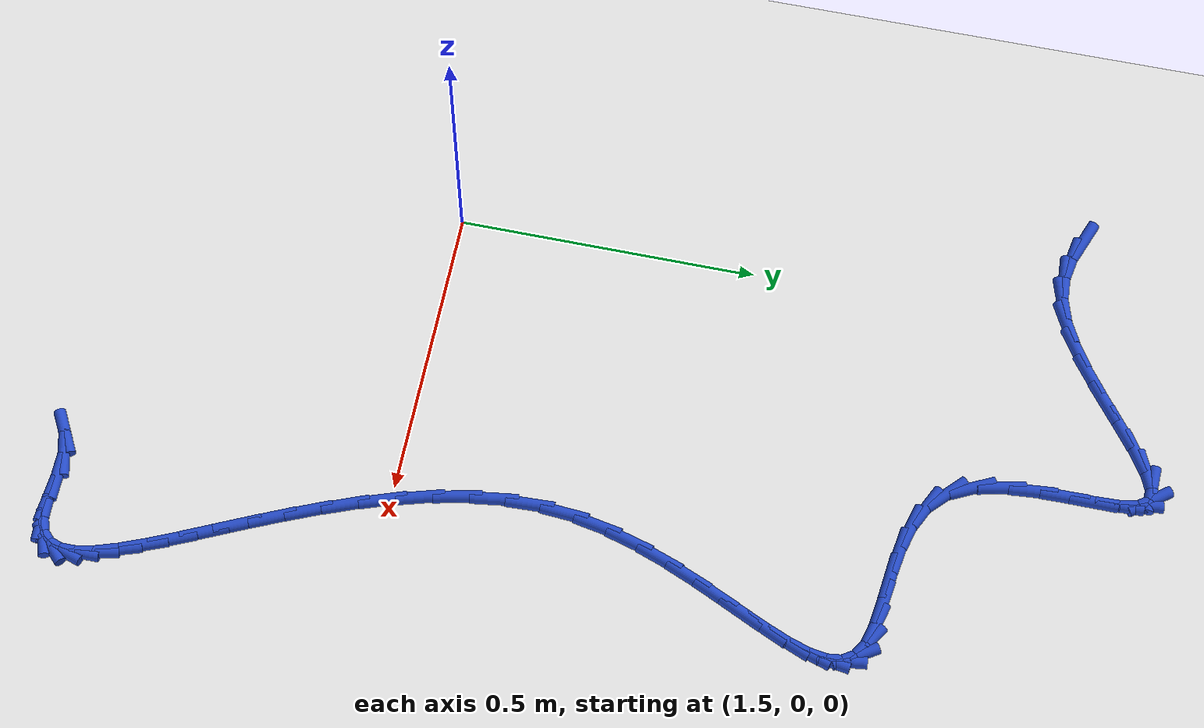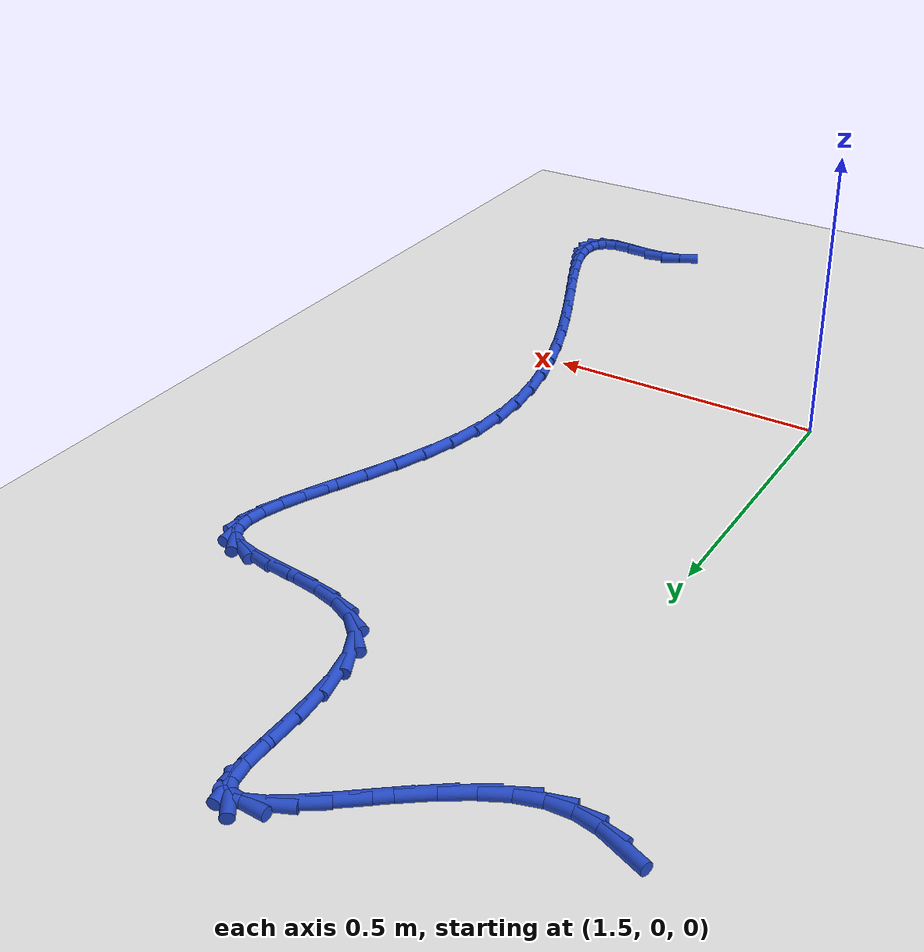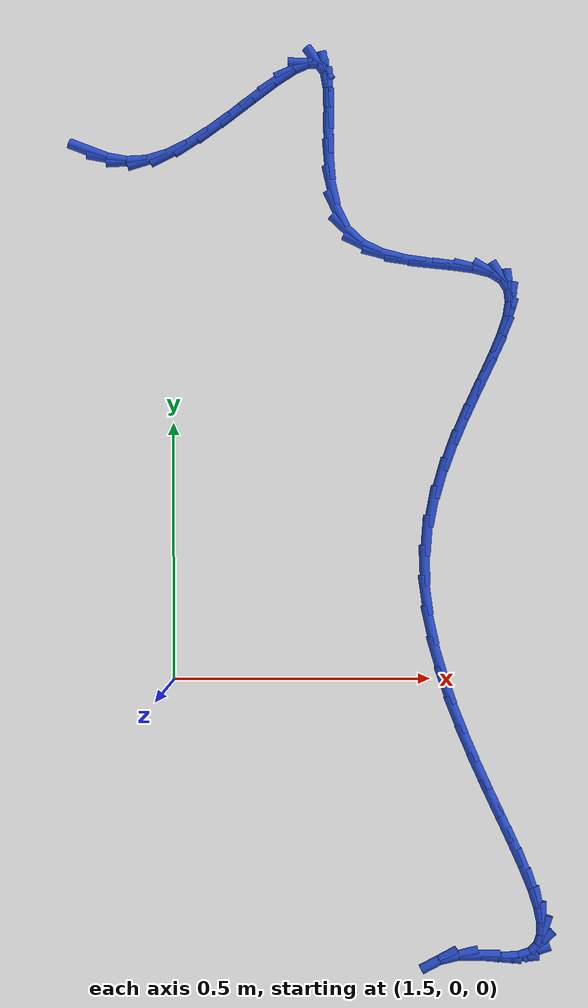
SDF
<sdf version="1.6">
 <world name="default">
  <model name="ground_plane">
   <static>1</static>
   <link name="link">
    <collision name="collision">
     <geometry><plane><normal>0 0 1</normal><size>100 100</size></plane></geometry>
     <surface><friction><ode><mu>100</mu><mu2>50</mu2></ode></friction></surface>
    </collision>
    <visual name="visual">
     <cast_shadows>0</cast_shadows>
     <geometry><plane><normal>0 0 1</normal><size>100 100</size></plane></geometry>
     <material>
      <script><uri>file://media/materials/scripts/gazebo.material</uri><name>Gazebo/WhiteGlow</name></script>
     </material>
    </visual>
   </link>
  </model>
  <model name="line">
   <link name="link_48">
    <pose>1.3337539306375097 1.0319830001110581 0.01 0 1.57 -0.36400352843014955</pose>
    <collision name="collision">
     <geometry><cylinder><radius>0.01</radius><length>0.08</length></cylinder></geometry>
    </collision>
    <visual name="visual">
     <material>
      <script><name>Gazebo/Blue</name><uri>file://media/materials/scripts/gazebo.material</uri></script>
     </material>
     <geometry><cylinder><radius>0.01</radius><length>0.08</length></cylinder></geometry>
    </visual>
   </link>
   <link name="link_49">
    <pose>1.3706001834991504 1.0179452955678614 0.01 0 1.57 -0.17708371613022572</pose>
    <collision name="collision">
     <geometry><cylinder><radius>0.01</radius><length>0.08</length></cylinder></geometry>
    </collision>
    <visual name="visual">
     <material>
      <script><name>Gazebo/Blue</name><uri>file://media/materials/scripts/gazebo.material</uri></script>
     </material>
     <geometry><cylinder><radius>0.01</radius><length>0.08</length></cylinder></geometry>
    </visual>
   </link>
   <link name="link_50">
    <pose>1.4086813195234185 1.0111303614218556 0.01 0 1.57 0.053120950739556694</pose>
    <collision name="collision">
     <geometry><cylinder><radius>0.01</radius><length>0.08</length></cylinder></geometry>
    </collision>
    <visual name="visual">
     <material>
      <script><name>Gazebo/Blue</name><uri>file://media/materials/scripts/gazebo.material</uri></script>
     </material>
     <geometry><cylinder><radius>0.01</radius><length>0.08</length></cylinder></geometry>
    </visual>
   </link>
   <link name="link_51">
    <pose>1.4485152433820359 1.0132483699275934 0.01 0 1.57 0.2912948138718969</pose>
    <collision name="collision">
     <geometry><cylinder><radius>0.01</radius><length>0.08</length></cylinder></geometry>
    </collision>
    <visual name="visual">
     <material>
      <script><name>Gazebo/Blue</name><uri>file://media/materials/scripts/gazebo.material</uri></script>
     </material>
     <geometry><cylinder><radius>0.01</radius><length>0.08</length></cylinder></geometry>
    </visual>
   </link>
   <link name="link_52">
    <pose>1.4905637073971858 1.025855485463928 0.01 0 1.57 0.46709459196604697</pose>
    <collision name="collision">
     <geometry><cylinder><radius>0.01</radius><length>0.08</length></cylinder></geometry>
    </collision>
    <visual name="visual">
     <material>
      <script><name>Gazebo/Blue</name><uri>file://media/materials/scripts/gazebo.material</uri></script>
     </material>
     <geometry><cylinder><radius>0.01</radius><length>0.08</length></cylinder></geometry>
    </visual>
   </link>
   <link name="link_53">
    <pose>1.534351632615425 1.047938444846299 0.01 0 1.57 0.5706663986711314</pose>
    <collision name="collision">
     <geometry><cylinder><radius>0.01</radius><length>0.08</length></cylinder></geometry>
    </collision>
    <visual name="visual">
     <material>
      <script><name>Gazebo/Blue</name><uri>file://media/materials/scripts/gazebo.material</uri></script>
     </material>
     <geometry><cylinder><radius>0.01</radius><length>0.08</length></cylinder></geometry>
    </visual>
   </link>
   <link name="link_54">
    <pose>1.5786299132699726 1.0763610777234653 0.01 0 1.57 0.6277244070314754</pose>
    <collision name="collision">
     <geometry><cylinder><radius>0.01</radius><length>0.08</length></cylinder></geometry>
    </collision>
    <visual name="visual">
     <material>
      <script><name>Gazebo/Blue</name><uri>file://media/materials/scripts/gazebo.material</uri></script>
     </material>
     <geometry><cylinder><radius>0.01</radius><length>0.08</length></cylinder></geometry>
    </visual>
   </link>
   <link name="link_55">
    <pose>1.6221262245512973 1.10792353136082 0.01 0 1.57 0.6499696890139711</pose>
    <collision name="collision">
     <geometry><cylinder><radius>0.01</radius><length>0.08</length></cylinder></geometry>
    </collision>
    <visual name="visual">
     <material>
      <script><name>Gazebo/Blue</name><uri>file://media/materials/scripts/gazebo.material</uri></script>
     </material>
     <geometry><cylinder><radius>0.01</radius><length>0.08</length></cylinder></geometry>
    </visual>
   </link>
   <link name="link_56">
    <pose>1.6635682416498665 1.1394259530237572 0.01 0 1.57 0.6376997019563035</pose>
    <collision name="collision">
     <geometry><cylinder><radius>0.01</radius><length>0.08</length></cylinder></geometry>
    </collision>
    <visual name="visual">
     <material>
      <script><name>Gazebo/Blue</name><uri>file://media/materials/scripts/gazebo.material</uri></script>
     </material>
     <geometry><cylinder><radius>0.01</radius><length>0.08</length></cylinder></geometry>
    </visual>
   </link>
   <link name="link_57">
    <pose>1.70168363975615 1.1676684899776708 0.01 0 1.57 0.5763144807700443</pose>
    <collision name="collision">
     <geometry><cylinder><radius>0.01</radius><length>0.08</length></cylinder></geometry>
    </collision>
    <visual name="visual">
     <material>
      <script><name>Gazebo/Blue</name><uri>file://media/materials/scripts/gazebo.material</uri></script>
     </material>
     <geometry><cylinder><radius>0.01</radius><length>0.08</length></cylinder></geometry>
    </visual>
   </link>
   <link name="link_58">
    <pose>1.7352000940606152 1.189451289487955 0.01 0 1.57 0.4132736091215912</pose>
    <collision name="collision">
     <geometry><cylinder><radius>0.01</radius><length>0.08</length></cylinder></geometry>
    </collision>
    <visual name="visual">
     <material>
      <script><name>Gazebo/Blue</name><uri>file://media/materials/scripts/gazebo.material</uri></script>
     </material>
     <geometry><cylinder><radius>0.01</radius><length>0.08</length></cylinder></geometry>
    </visual>
   </link>
   <link name="link_59">
    <pose>1.7628452797537293 1.2015744988200023 0.01 0 1.57 -0.03589561886949671</pose>
    <collision name="collision">
     <geometry><cylinder><radius>0.01</radius><length>0.08</length></cylinder></geometry>
    </collision>
    <visual name="visual">
     <material>
      <script><name>Gazebo/Blue</name><uri>file://media/materials/scripts/gazebo.material</uri></script>
     </material>
     <geometry><cylinder><radius>0.01</radius><length>0.08</length></cylinder></geometry>
    </visual>
   </link>
   <link name="link_60">
    <pose>1.7833468720259624 1.2008382652392073 0.01 0 1.57 -0.9226782099739248</pose>
    <collision name="collision">
     <geometry><cylinder><radius>0.01</radius><length>0.08</length></cylinder></geometry>
    </collision>
    <visual name="visual">
     <material>
      <script><name>Gazebo/Blue</name><uri>file://media/materials/scripts/gazebo.material</uri></script>
     </material>
     <geometry><cylinder><radius>0.01</radius><length>0.08</length></cylinder></geometry>
    </visual>
   </link>
   <link name="link_61">
    <pose>1.795703123769249 1.1845207636618194 0.01 0 1.57 -1.3897188025791753</pose>
    <collision name="collision">
     <geometry><cylinder><radius>0.01</radius><length>0.08</length></cylinder></geometry>
    </collision>
    <visual name="visual">
     <material>
      <script><name>Gazebo/Blue</name><uri>file://media/materials/scripts/gazebo.material</uri></script>
     </material>
     <geometry><cylinder><radius>0.01</radius><length>0.08</length></cylinder></geometry>
    </visual>
   </link>
   <link name="link_62">
    <pose>1.801276769686214 1.1540774817661033 0.01 0 1.57 -1.5372298876736168</pose>
    <collision name="collision">
     <geometry><cylinder><radius>0.01</radius><length>0.08</length></cylinder></geometry>
    </collision>
    <visual name="visual">
     <material>
      <script><name>Gazebo/Blue</name><uri>file://media/materials/scripts/gazebo.material</uri></script>
     </material>
     <geometry><cylinder><radius>0.01</radius><length>0.08</length></cylinder></geometry>
    </visual>
   </link>
   <link name="link_63">
    <pose>1.80265201997051 1.1131218790675736 0.01 0 1.57 1.566015073553247</pose>
    <collision name="collision">
     <geometry><cylinder><radius>0.01</radius><length>0.08</length></cylinder></geometry>
    </collision>
    <visual name="visual">
     <material>
      <script><name>Gazebo/Blue</name><uri>file://media/materials/scripts/gazebo.material</uri></script>
     </material>
     <geometry><cylinder><radius>0.01</radius><length>0.08</length></cylinder></geometry>
    </visual>
   </link>
   <link name="link_64">
    <pose>1.8024233002060286 1.0652854625371406 0.01 0 1.57 -1.5558864992763892</pose>
    <collision name="collision">
     <geometry><cylinder><radius>0.01</radius><length>0.08</length></cylinder></geometry>
    </collision>
    <visual name="visual">
     <material>
      <script><name>Gazebo/Blue</name><uri>file://media/materials/scripts/gazebo.material</uri></script>
     </material>
     <geometry><cylinder><radius>0.01</radius><length>0.08</length></cylinder></geometry>
    </visual>
   </link>
   <link name="link_65">
    <pose>1.8031850359766608 1.014199739145715 0.01 0 1.57 -1.485279274026279</pose>
    <collision name="collision">
     <geometry><cylinder><radius>0.01</radius><length>0.08</length></cylinder></geometry>
    </collision>
    <visual name="visual">
     <material>
      <script><name>Gazebo/Blue</name><uri>file://media/materials/scripts/gazebo.material</uri></script>
     </material>
     <geometry><cylinder><radius>0.01</radius><length>0.08</length></cylinder></geometry>
    </visual>
   </link>
   <link name="link_66">
    <pose>1.8075316528662984 0.9634962158642075 0.01 0 1.57 -1.349059631537695</pose>
    <collision name="collision">
     <geometry><cylinder><radius>0.01</radius><length>0.08</length></cylinder></geometry>
    </collision>
    <visual name="visual">
     <material>
      <script><name>Gazebo/Blue</name><uri>file://media/materials/scripts/gazebo.material</uri></script>
     </material>
     <geometry><cylinder><radius>0.01</radius><length>0.08</length></cylinder></geometry>
    </visual>
   </link>
   <link name="link_67">
    <pose>1.8180575764588318 0.9168063996635276 0.01 0 1.57 -1.1117209787946738</pose>
    <collision name="collision">
     <geometry><cylinder><radius>0.01</radius><length>0.08</length></cylinder></geometry>
    </collision>
    <visual name="visual">
     <material>
      <script><name>Gazebo/Blue</name><uri>file://media/materials/scripts/gazebo.material</uri></script>
     </material>
     <geometry><cylinder><radius>0.01</radius><length>0.08</length></cylinder></geometry>
    </visual>
   </link>
   <link name="link_68">
    <pose>1.8373572323381522 0.8777617975145865 0.01 0 1.57 -0.7566590972441934</pose>
    <collision name="collision">
     <geometry><cylinder><radius>0.01</radius><length>0.08</length></cylinder></geometry>
    </collision>
    <visual name="visual">
     <material>
      <script><name>Gazebo/Blue</name><uri>file://media/materials/scripts/gazebo.material</uri></script>
     </material>
     <geometry><cylinder><radius>0.01</radius><length>0.08</length></cylinder></geometry>
    </visual>
   </link>
   <link name="link_69">
    <pose>1.8674269218202773 0.8493726238579378 0.01 0 1.57 -0.4471492917470675</pose>
    <collision name="collision">
     <geometry><cylinder><radius>0.01</radius><length>0.08</length></cylinder></geometry>
    </collision>
    <visual name="visual">
     <material>
      <script><name>Gazebo/Blue</name><uri>file://media/materials/scripts/gazebo.material</uri></script>
     </material>
     <geometry><cylinder><radius>0.01</radius><length>0.08</length></cylinder></geometry>
    </visual>
   </link>
   <link name="link_70">
    <pose>1.9064308257885931 0.8306685360357183 0.01 0 1.57 -0.25365262705605074</pose>
    <collision name="collision">
     <geometry><cylinder><radius>0.01</radius><length>0.08</length></cylinder></geometry>
    </collision>
    <visual name="visual">
     <material>
      <script><name>Gazebo/Blue</name><uri>file://media/materials/scripts/gazebo.material</uri></script>
     </material>
     <geometry><cylinder><radius>0.01</radius><length>0.08</length></cylinder></geometry>
    </visual>
   </link>
   <link name="link_71">
    <pose>1.9510214991236716 0.8191090127588253 0.01 0 1.57 -0.14753956772271795</pose>
    <collision name="collision">
     <geometry><cylinder><radius>0.01</radius><length>0.08</length></cylinder></geometry>
    </collision>
    <visual name="visual">
     <material>
      <script><name>Gazebo/Blue</name><uri>file://media/materials/scripts/gazebo.material</uri></script>
     </material>
     <geometry><cylinder><radius>0.01</radius><length>0.08</length></cylinder></geometry>
    </visual>
   </link>
   <link name="link_72">
    <pose>1.9978478149712071 0.8121497083917767 0.01 0 1.57 -0.10686202392522685</pose>
    <collision name="collision">
     <geometry><cylinder><radius>0.01</radius><length>0.08</length></cylinder></geometry>
    </collision>
    <visual name="visual">
     <material>
      <script><name>Gazebo/Blue</name><uri>file://media/materials/scripts/gazebo.material</uri></script>
     </material>
     <geometry><cylinder><radius>0.01</radius><length>0.08</length></cylinder></geometry>
    </visual>
   </link>
   <link name="link_73">
    <pose>2.043558646476893 0.8072462772990899 0.01 0 1.57 -0.1299939142345705</pose>
    <collision name="collision">
     <geometry><cylinder><radius>0.01</radius><length>0.08</length></cylinder></geometry>
    </collision>
    <visual name="visual">
     <material>
      <script><name>Gazebo/Blue</name><uri>file://media/materials/scripts/gazebo.material</uri></script>
     </material>
     <geometry><cylinder><radius>0.01</radius><length>0.08</length></cylinder></geometry>
    </visual>
   </link>
   <link name="link_74">
    <pose>2.0848028667864247 0.8018543738452828 0.01 0 1.57 -0.2468952321997783</pose>
    <collision name="collision">
     <geometry><cylinder><radius>0.01</radius><length>0.08</length></cylinder></geometry>
    </collision>
    <visual name="visual">
     <material>
      <script><name>Gazebo/Blue</name><uri>file://media/materials/scripts/gazebo.material</uri></script>
     </material>
     <geometry><cylinder><radius>0.01</radius><length>0.08</length></cylinder></geometry>
    </visual>
   </link>
   <link name="link_75">
    <pose>2.1182293490454946 0.7934296523948727 0.01 0 1.57 -0.5438593795783099</pose>
    <collision name="collision">
     <geometry><cylinder><radius>0.01</radius><length>0.08</length></cylinder></geometry>
    </collision>
    <visual name="visual">
     <material>
      <script><name>Gazebo/Blue</name><uri>file://media/materials/scripts/gazebo.material</uri></script>
     </material>
     <geometry><cylinder><radius>0.01</radius><length>0.08</length></cylinder></geometry>
    </visual>
   </link>
   <link name="link_76">
    <pose>2.1409323989203535 0.7797013921637017 0.01 0 1.57 -1.0131340074453357</pose>
    <collision name="collision">
     <geometry><cylinder><radius>0.01</radius><length>0.08</length></cylinder></geometry>
    </collision>
    <visual name="visual">
     <material>
      <script><name>Gazebo/Blue</name><uri>file://media/materials/scripts/gazebo.material</uri></script>
     </material>
     <geometry><cylinder><radius>0.01</radius><length>0.08</length></cylinder></geometry>
    </visual>
   </link>
   <link name="link_77">
    <pose>2.1530518826237985 0.7602697304960382 0.01 0 1.57 -1.4521743615835185</pose>
    <collision name="collision">
     <geometry><cylinder><radius>0.01</radius><length>0.08</length></cylinder></geometry>
    </collision>
    <visual name="visual">
     <material>
      <script><name>Gazebo/Blue</name><uri>file://media/materials/scripts/gazebo.material</uri></script>
     </material>
     <geometry><cylinder><radius>0.01</radius><length>0.08</length></cylinder></geometry>
    </visual>
   </link>
   <link name="link_78">
    <pose>2.156001885180525 0.7355175449198376 0.01 0 1.57 1.4104618495751808</pose>
    <collision name="collision">
     <geometry><cylinder><radius>0.01</radius><length>0.08</length></cylinder></geometry>
    </collision>
    <visual name="visual">
     <material>
      <script><name>Gazebo/Blue</name><uri>file://media/materials/scripts/gazebo.material</uri></script>
     </material>
     <geometry><cylinder><radius>0.01</radius><length>0.08</length></cylinder></geometry>
    </visual>
   </link>
   <link name="link_79">
    <pose>2.15120079375677 0.7058303557266292 0.01 0 1.57 1.2563826910621199</pose>
    <collision name="collision">
     <geometry><cylinder><radius>0.01</radius><length>0.08</length></cylinder></geometry>
    </collision>
    <visual name="visual">
     <material>
      <script><name>Gazebo/Blue</name><uri>file://media/materials/scripts/gazebo.material</uri></script>
     </material>
     <geometry><cylinder><radius>0.01</radius><length>0.08</length></cylinder></geometry>
    </visual>
   </link>
   <link name="link_80">
    <pose>2.1400669955187714 0.6715936832079424 0.01 0 1.57 1.1749438660977565</pose>
    <collision name="collision">
     <geometry><cylinder><radius>0.01</radius><length>0.08</length></cylinder></geometry>
    </collision>
    <visual name="visual">
     <material>
      <script><name>Gazebo/Blue</name><uri>file://media/materials/scripts/gazebo.material</uri></script>
     </material>
     <geometry><cylinder><radius>0.01</radius><length>0.08</length></cylinder></geometry>
    </visual>
   </link>
   <link name="link_81">
    <pose>2.124018877632766 0.6331930476553054 0.01 0 1.57 1.1368888580453014</pose>
    <collision name="collision">
     <geometry><cylinder><radius>0.01</radius><length>0.08</length></cylinder></geometry>
    </collision>
    <visual name="visual">
     <material>
      <script><name>Gazebo/Blue</name><uri>file://media/materials/scripts/gazebo.material</uri></script>
     </material>
     <geometry><cylinder><radius>0.01</radius><length>0.08</length></cylinder></geometry>
    </visual>
   </link>
   <link name="link_82">
    <pose>2.1044748272649905 0.5910139693602473 0.01 0 1.57 1.1277975543776535</pose>
    <collision name="collision">
     <geometry><cylinder><radius>0.01</radius><length>0.08</length></cylinder></geometry>
    </collision>
    <visual name="visual">
     <material>
      <script><name>Gazebo/Blue</name><uri>file://media/materials/scripts/gazebo.material</uri></script>
     </material>
     <geometry><cylinder><radius>0.01</radius><length>0.08</length></cylinder></geometry>
    </visual>
   </link>
   <link name="link_83">
    <pose>2.0828532315816832 0.5454419686142977 0.01 0 1.57 1.14077560575886</pose>
    <collision name="collision">
     <geometry><cylinder><radius>0.01</radius><length>0.08</length></cylinder></geometry>
    </collision>
    <visual name="visual">
     <material>
      <script><name>Gazebo/Blue</name><uri>file://media/materials/scripts/gazebo.material</uri></script>
     </material>
     <geometry><cylinder><radius>0.01</radius><length>0.08</length></cylinder></geometry>
    </visual>
   </link>
   <link name="link_84">
    <pose>2.06057247774908 0.4968625657089848 0.01 0 1.57 1.1728863777894047</pose>
    <collision name="collision">
     <geometry><cylinder><radius>0.01</radius><length>0.08</length></cylinder></geometry>
    </collision>
    <visual name="visual">
     <material>
      <script><name>Gazebo/Blue</name><uri>file://media/materials/scripts/gazebo.material</uri></script>
     </material>
     <geometry><cylinder><radius>0.01</radius><length>0.08</length></cylinder></geometry>
    </visual>
   </link>
   <link name="link_85">
    <pose>2.039050952933419 0.4456612809358376 0.01 0 1.57 1.2234799303606845</pose>
    <collision name="collision">
     <geometry><cylinder><radius>0.01</radius><length>0.08</length></cylinder></geometry>
    </collision>
    <visual name="visual">
     <material>
      <script><name>Gazebo/Blue</name><uri>file://media/materials/scripts/gazebo.material</uri></script>
     </material>
     <geometry><cylinder><radius>0.01</radius><length>0.08</length></cylinder></geometry>
    </visual>
   </link>
   <link name="link_86">
    <pose>2.019707044300937 0.3922236345863862 0.01 0 1.57 1.2933129779059274</pose>
    <collision name="collision">
     <geometry><cylinder><radius>0.01</radius><length>0.08</length></cylinder></geometry>
    </collision>
    <visual name="visual">
     <material>
      <script><name>Gazebo/Blue</name><uri>file://media/materials/scripts/gazebo.material</uri></script>
     </material>
     <geometry><cylinder><radius>0.01</radius><length>0.08</length></cylinder></geometry>
    </visual>
   </link>
   <link name="link_87">
    <pose>2.003959139017872 0.3369351469521581 0.01 0 1.57 1.383879867172445</pose>
    <collision name="collision">
     <geometry><cylinder><radius>0.01</radius><length>0.08</length></cylinder></geometry>
    </collision>
    <visual name="visual">
     <material>
      <script><name>Gazebo/Blue</name><uri>file://media/materials/scripts/gazebo.material</uri></script>
     </material>
     <geometry><cylinder><radius>0.01</radius><length>0.08</length></cylinder></geometry>
    </visual>
   </link>
   <link name="link_88">
    <pose>1.9932256242504593 0.28018133832468295 0.01 0 1.57 1.4958244685458428</pose>
    <collision name="collision">
     <geometry><cylinder><radius>0.01</radius><length>0.08</length></cylinder></geometry>
    </collision>
    <visual name="visual">
     <material>
      <script><name>Gazebo/Blue</name><uri>file://media/materials/scripts/gazebo.material</uri></script>
     </material>
     <geometry><cylinder><radius>0.01</radius><length>0.08</length></cylinder></geometry>
    </visual>
   </link>
   <link name="link_89">
    <pose>1.9888816191019523 0.22234812863861078 0.01 0 1.57 -1.531008699874685</pose>
    <collision name="collision">
     <geometry><cylinder><radius>0.01</radius><length>0.08</length></cylinder></geometry>
    </collision>
    <visual name="visual">
     <material>
      <script><name>Gazebo/Blue</name><uri>file://media/materials/scripts/gazebo.material</uri></script>
     </material>
     <geometry><cylinder><radius>0.01</radius><length>0.08</length></cylinder></geometry>
    </visual>
   </link>
   <link name="link_90">
    <pose>1.9912110855991048 0.1638315162418504 0.01 0 1.57 -1.4332269015085914</pose>
    <collision name="collision">
     <geometry><cylinder><radius>0.01</radius><length>0.08</length></cylinder></geometry>
    </collision>
    <visual name="visual">
     <material>
      <script><name>Gazebo/Blue</name><uri>file://media/materials/scripts/gazebo.material</uri></script>
     </material>
     <geometry><cylinder><radius>0.01</radius><length>0.08</length></cylinder></geometry>
    </visual>
   </link>
   <link name="link_91">
    <pose>1.9993506756472734 0.1050380965501259 0.01 0 1.57 -1.3521987387886845</pose>
    <collision name="collision">
     <geometry><cylinder><radius>0.01</radius><length>0.08</length></cylinder></geometry>
    </collision>
    <visual name="visual">
     <material>
      <script><name>Gazebo/Blue</name><uri>file://media/materials/scripts/gazebo.material</uri></script>
     </material>
     <geometry><cylinder><radius>0.01</radius><length>0.08</length></cylinder></geometry>
    </visual>
   </link>
   <link name="link_92">
    <pose>2.012382533613627 0.04637496843508849 0.01 0 1.57 -1.2861632014727948</pose>
    <collision name="collision">
     <geometry><cylinder><radius>0.01</radius><length>0.08</length></cylinder></geometry>
    </collision>
    <visual name="visual">
     <material>
      <script><name>Gazebo/Blue</name><uri>file://media/materials/scripts/gazebo.material</uri></script>
     </material>
     <geometry><cylinder><radius>0.01</radius><length>0.08</length></cylinder></geometry>
    </visual>
   </link>
   <link name="link_93">
    <pose>2.0293888038653383 -0.011750769231610732 0.01 0 1.57 -1.2333522319811556</pose>
    <collision name="collision">
     <geometry><cylinder><radius>0.01</radius><length>0.08</length></cylinder></geometry>
    </collision>
    <visual name="visual">
     <material>
      <script><name>Gazebo/Blue</name><uri>file://media/materials/scripts/gazebo.material</uri></script>
     </material>
     <geometry><cylinder><radius>0.01</radius><length>0.08</length></cylinder></geometry>
    </visual>
   </link>
   <link name="link_94">
    <pose>2.049451630769576 -0.0689320175783224 0.01 0 1.57 -1.1923040961105276</pose>
    <collision name="collision">
     <geometry><cylinder><radius>0.01</radius><length>0.08</length></cylinder></geometry>
    </collision>
    <visual name="visual">
     <material>
      <script><name>Gazebo/Blue</name><uri>file://media/materials/scripts/gazebo.material</uri></script>
     </material>
     <geometry><cylinder><radius>0.01</radius><length>0.08</length></cylinder></geometry>
    </visual>
   </link>
   <link name="link_95">
    <pose>2.0716531586935134 -0.12476167773339539 0.01 0 1.57 -1.1620190118330418</pose>
    <collision name="collision">
     <geometry><cylinder><radius>0.01</radius><length>0.08</length></cylinder></geometry>
    </collision>
    <visual name="visual">
     <material>
      <script><name>Gazebo/Blue</name><uri>file://media/materials/scripts/gazebo.material</uri></script>
     </material>
     <geometry><cylinder><radius>0.01</radius><length>0.08</length></cylinder></geometry>
    </visual>
   </link>
   <link name="link_96">
    <pose>2.095075532004319 -0.17883265082517927 0.01 0 1.57 -1.1420616849466045</pose>
    <collision name="collision">
     <geometry><cylinder><radius>0.01</radius><length>0.08</length></cylinder></geometry>
    </collision>
    <visual name="visual">
     <material>
      <script><name>Gazebo/Blue</name><uri>file://media/materials/scripts/gazebo.material</uri></script>
     </material>
     <geometry><cylinder><radius>0.01</radius><length>0.08</length></cylinder></geometry>
    </visual>
   </link>
   <link name="link_97">
    <pose>2.118800895069164 -0.23073783798202332 0.01 0 1.57 -1.132692783795648</pose>
    <collision name="collision">
     <geometry><cylinder><radius>0.01</radius><length>0.08</length></cylinder></geometry>
    </collision>
    <visual name="visual">
     <material>
      <script><name>Gazebo/Blue</name><uri>file://media/materials/scripts/gazebo.material</uri></script>
     </material>
     <geometry><cylinder><radius>0.01</radius><length>0.08</length></cylinder></geometry>
    </visual>
   </link>
   <link name="link_98">
    <pose>2.141911392255219 -0.280070140332276 0.01 0 1.57 -1.1351139474998215</pose>
    <collision name="collision">
     <geometry><cylinder><radius>0.01</radius><length>0.08</length></cylinder></geometry>
    </collision>
    <visual name="visual">
     <material>
      <script><name>Gazebo/Blue</name><uri>file://media/materials/scripts/gazebo.material</uri></script>
     </material>
     <geometry><cylinder><radius>0.01</radius><length>0.08</length></cylinder></geometry>
    </visual>
   </link>
   <link name="link_99">
    <pose>2.1634891679296557 -0.326422459004289 0.01 0 1.57 -1.1519592063120503</pose>
    <collision name="collision">
     <geometry><cylinder><radius>0.01</radius><length>0.08</length></cylinder></geometry>
    </collision>
    <visual name="visual">
     <material>
      <script><name>Gazebo/Blue</name><uri>file://media/materials/scripts/gazebo.material</uri></script>
     </material>
     <geometry><cylinder><radius>0.01</radius><length>0.08</length></cylinder></geometry>
    </visual>
   </link>
   <link name="link_100">
    <pose>2.182616366459645 -0.36938769512641056 0.01 0 1.57 -1.1883032619250335</pose>
    <collision name="collision">
     <geometry><cylinder><radius>0.01</radius><length>0.08</length></cylinder></geometry>
    </collision>
    <visual name="visual">
     <material>
      <script><name>Gazebo/Blue</name><uri>file://media/materials/scripts/gazebo.material</uri></script>
     </material>
     <geometry><cylinder><radius>0.01</radius><length>0.08</length></cylinder></geometry>
    </visual>
   </link>
   <link name="link_101">
    <pose>2.198375132212357 -0.4085587498269904 0.01 0 1.57 -1.2537916882541182</pose>
    <collision name="collision">
     <geometry><cylinder><radius>0.01</radius><length>0.08</length></cylinder></geometry>
    </collision>
    <visual name="visual">
     <material>
      <script><name>Gazebo/Blue</name><uri>file://media/materials/scripts/gazebo.material</uri></script>
     </material>
     <geometry><cylinder><radius>0.01</radius><length>0.08</length></cylinder></geometry>
    </visual>
   </link>
   <link name="link_102">
    <pose>2.209847609554961 -0.4435285242343776 0.01 0 1.57 -1.367199553780641</pose>
    <collision name="collision">
     <geometry><cylinder><radius>0.01</radius><length>0.08</length></cylinder></geometry>
    </collision>
    <visual name="visual">
     <material>
      <script><name>Gazebo/Blue</name><uri>file://media/materials/scripts/gazebo.material</uri></script>
     </material>
     <geometry><cylinder><radius>0.01</radius><length>0.08</length></cylinder></geometry>
    </visual>
   </link>
   <link name="link_103">
    <pose>2.21611594285463 -0.4738899194769219 0.01 0 1.57 -1.5650229315438475</pose>
    <collision name="collision">
     <geometry><cylinder><radius>0.01</radius><length>0.08</length></cylinder></geometry>
    </collision>
    <visual name="visual">
     <material>
      <script><name>Gazebo/Blue</name><uri>file://media/materials/scripts/gazebo.material</uri></script>
     </material>
     <geometry><cylinder><radius>0.01</radius><length>0.08</length></cylinder></geometry>
    </visual>
   </link>
   <link name="link_104">
    <pose>2.2162622764785334 -0.4992358366829725 0.01 0 1.57 1.237687357251031</pose>
    <collision name="collision">
     <geometry><cylinder><radius>0.01</radius><length>0.08</length></cylinder></geometry>
    </collision>
    <visual name="visual">
     <material>
      <script><name>Gazebo/Blue</name><uri>file://media/materials/scripts/gazebo.material</uri></script>
     </material>
     <geometry><cylinder><radius>0.01</radius><length>0.08</length></cylinder></geometry>
    </visual>
   </link>
   <link name="link_105">
    <pose>2.2093687547938425 -0.5191591769808788 0.01 0 1.57 0.7592313681331802</pose>
    <collision name="collision">
     <geometry><cylinder><radius>0.01</radius><length>0.08</length></cylinder></geometry>
    </collision>
    <visual name="visual">
     <material>
      <script><name>Gazebo/Blue</name><uri>file://media/materials/scripts/gazebo.material</uri></script>
     </material>
     <geometry><cylinder><radius>0.01</radius><length>0.08</length></cylinder></geometry>
    </visual>
   </link>
   <link name="link_106">
    <pose>2.194517522167728 -0.533252841498991 0.01 0 1.57 0.31977516528237004</pose>
    <collision name="collision">
     <geometry><cylinder><radius>0.01</radius><length>0.08</length></cylinder></geometry>
    </collision>
    <visual name="visual">
     <material>
      <script><name>Gazebo/Blue</name><uri>file://media/materials/scripts/gazebo.material</uri></script>
     </material>
     <geometry><cylinder><radius>0.01</radius><length>0.08</length></cylinder></geometry>
    </visual>
   </link>
   <link name="link_107">
    <pose>2.170790722967361 -0.5411097313656579 0.01 0 1.57 0.03633252755823281</pose>
    <collision name="collision">
     <geometry><cylinder><radius>0.01</radius><length>0.08</length></cylinder></geometry>
    </collision>
    <visual name="visual">
     <material>
      <script><name>Gazebo/Blue</name><uri>file://media/materials/scripts/gazebo.material</uri></script>
     </material>
     <geometry><cylinder><radius>0.01</radius><length>0.08</length></cylinder></geometry>
    </visual>
   </link>
   <link name="link_108">
    <pose>2.137275929974445 -0.5423279445880208 0.01 0 1.57 -0.08120687113616415</pose>
    <collision name="collision">
     <geometry><cylinder><radius>0.01</radius><length>0.08</length></cylinder></geometry>
    </collision>
    <visual name="visual">
     <material>
      <script><name>Gazebo/Blue</name><uri>file://media/materials/scripts/gazebo.material</uri></script>
     </material>
     <geometry><cylinder><radius>0.01</radius><length>0.08</length></cylinder></geometry>
    </visual>
   </link>
   <link name="link_109">
    <pose>2.0955994946192766 -0.5389360724291997 0.01 0 1.57 0.005221029768512452</pose>
    <collision name="collision">
     <geometry><cylinder><radius>0.01</radius><length>0.08</length></cylinder></geometry>
    </collision>
    <visual name="visual">
     <material>
      <script><name>Gazebo/Blue</name><uri>file://media/materials/scripts/gazebo.material</uri></script>
     </material>
     <geometry><cylinder><radius>0.01</radius><length>0.08</length></cylinder></geometry>
    </visual>
   </link>
   <link name="link_110">
    <pose>2.0538636663850722 -0.539153978410805 0.01 0 1.57 0.23648676385532444</pose>
    <collision name="collision">
     <geometry><cylinder><radius>0.01</radius><length>0.08</length></cylinder></geometry>
    </collision>
    <visual name="visual">
     <material>
      <script><name>Gazebo/Blue</name><uri>file://media/materials/scripts/gazebo.material</uri></script>
     </material>
     <geometry><cylinder><radius>0.01</radius><length>0.08</length></cylinder></geometry>
    </visual>
   </link>
   <link name="link_111">
    <pose>2.017178182014637 -0.5479950427686473 0.01 0 1.57 0.4874377915331237</pose>
    <collision name="collision">
     <geometry><cylinder><radius>0.01</radius><length>0.08</length></cylinder></geometry>
    </collision>
    <visual name="visual">
     <material>
      <script><name>Gazebo/Blue</name><uri>file://media/materials/scripts/gazebo.material</uri></script>
     </material>
     <geometry><cylinder><radius>0.01</radius><length>0.08</length></cylinder></geometry>
    </visual>
   </link>
  </model>
 </world>
</sdf>
